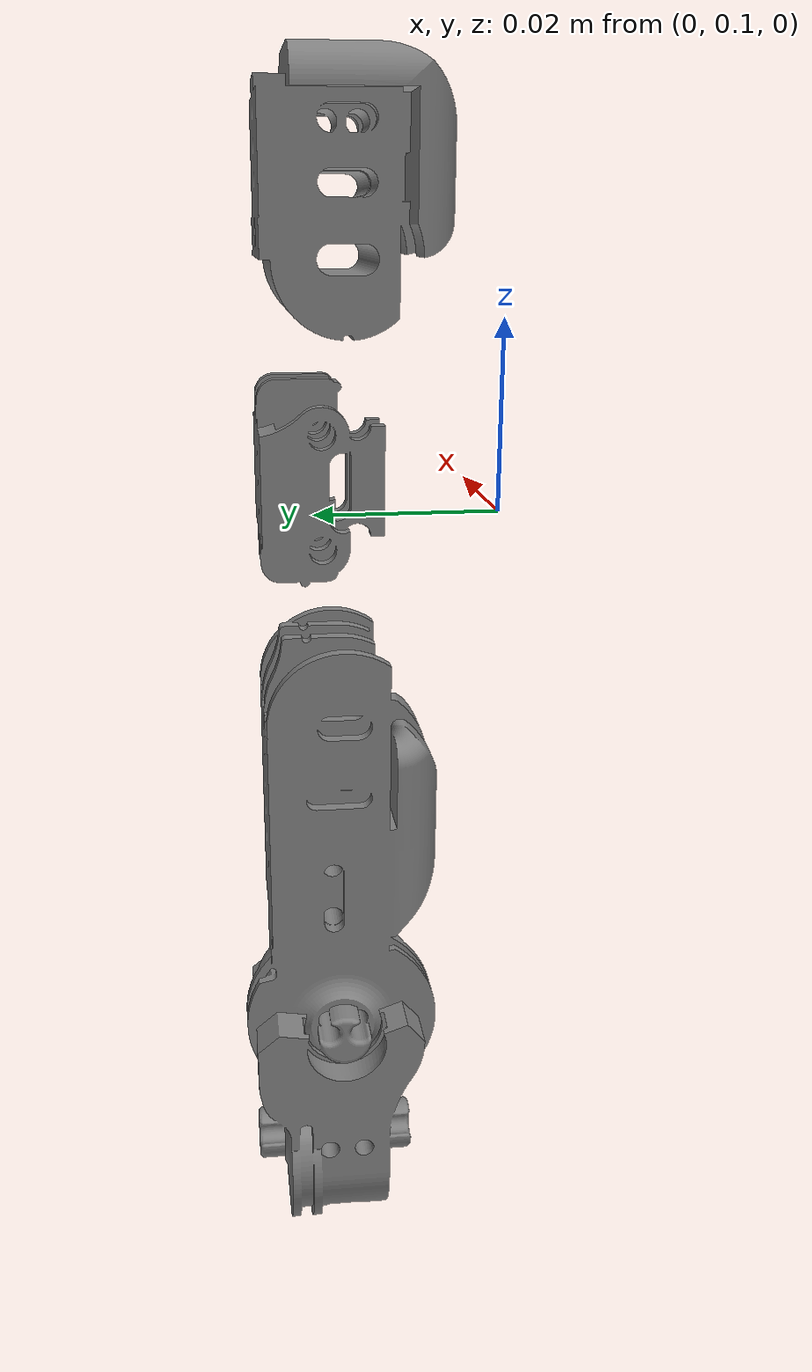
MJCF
<mujoco model="index_finger">
  <compiler angle="radian" autolimits="true" />
  <asset>
    <mesh name="mcp_yoke_index" file="meshes/mcp_yoke_index.stl" scale="0.001 0.001 0.001" />
    <mesh name="index_proximal" file="meshes/index_proximal.stl" scale="0.001 0.001 0.001" />
    <mesh name="index_mid" file="meshes/index_mid.stl" scale="0.001 0.001 0.001" />
    <mesh name="index_distal" file="meshes/index_distal.stl" scale="0.001 0.001 0.001" />
  </asset>
  <worldbody>
    <body name="mcp_yoke_index" pos="0 0 0" euler="0 0 0">
      <joint name="palm_Umdrehung-23" type="hinge" axis="1.2212453270876722e-15 1.0000003094489525 -1.0760715823648317e-15" pos="-0.004630546920022178 0.12810299642551953 -0.07585199999999984" range="-0.139626 1.047198" />
      <geom name="mcp_yoke_index_geom" type="mesh" mesh="mcp_yoke_index" />
      <inertial mass="0.03024597412328207" pos="-0.004564739098542305 0.11906419921253554 -0.07114133767215629" fullinertia="2.3694423686153615e-06 2.774631738318665e-06 1.7058089026192892e-06 4.050686817436936e-09 1.551582610028999e-08 -1.1867391406422049e-08" />
      <body name="index_proximal" pos="-0.016881205986811528 0.1262794380742566 -0.20000000000000015" euler="5.551115123125826e-17 1.6653345369376924e-16 1.5707963267948961">
        <joint name="mcp_yoke_index_Umdrehung-24" type="hinge" axis="-8.881784197001252e-16 -1.0000003094489514 -1.970786661817975e-15" pos="-0.008278876231549229 -0.020400064719964552 0.14214799999999955" range="-1.22173 2.094395" />
        <geom name="index_proximal_geom" type="mesh" mesh="index_proximal" />
        <inertial mass="0.06800703608404635" pos="-0.008372598721847513 -0.012121956398225015 0.16016562338504328" fullinertia="1.3053183758927164e-05 1.3452967427260017e-05 3.1428435582534022e-06 3.4233038632561446e-09 6.897054398737518e-08 1.2079100265235034e-08" />
        <body name="index_mid" pos="-4.107825191113079e-17 8.240630400280225e-16 0.00600000000000019" euler="4.829470157119423e-15 3.8857805861879956e-16 -2.010094136663147e-30">
          <joint name="index_proximal_Umdrehung-7" type="hinge" axis="-1.3322676295501878e-15 -1.00000030944895 2.858684989775924e-15" pos="-0.004854358090262679 -0.009225656256873606 0.18284799999999937" range="-0.349066 1.919862" />
          <geom name="index_mid_geom" type="mesh" mesh="index_mid" />
          <inertial mass="0.0073929201499879265" pos="-0.0042574103493894615 -0.012125337919033231 0.19893395284236193" fullinertia="3.454740608966614e-07 2.4791115778349194e-07 2.540763342345309e-07 -9.892328381655736e-14 5.112056267223037e-10 1.950282805409278e-12" />
          <body name="index_distal" pos="-1.3944401189291967e-15 -1.3877787807814457e-19 -1.799999999995805e-05" euler="-1.110223024625161e-16 -2.775557561562893e-16 -1.6653345369377508e-16">
            <joint name="index_mid_Umdrehung-8" type="hinge" axis="-6.661338147750939e-16 -1.0000003094489498 2.747662652957672e-15" pos="-0.008278876231547652 -0.01212550116651956 0.20806599999999917" range="-0.349066 1.919862" />
            <geom name="index_distal_geom" type="mesh" mesh="index_distal" />
            <inertial mass="0.03538327309676192" pos="-0.009139627177317729 -0.01212535494008694 0.2259468756238603" fullinertia="2.4475969895717706e-06 2.507393252736437e-06 1.6308149487060445e-06 -4.441266906613317e-12 1.9422665276334704e-07 -1.925376348300507e-12" />
          </body>
        </body>
      </body>
    </body>
  </worldbody>
</mujoco>
